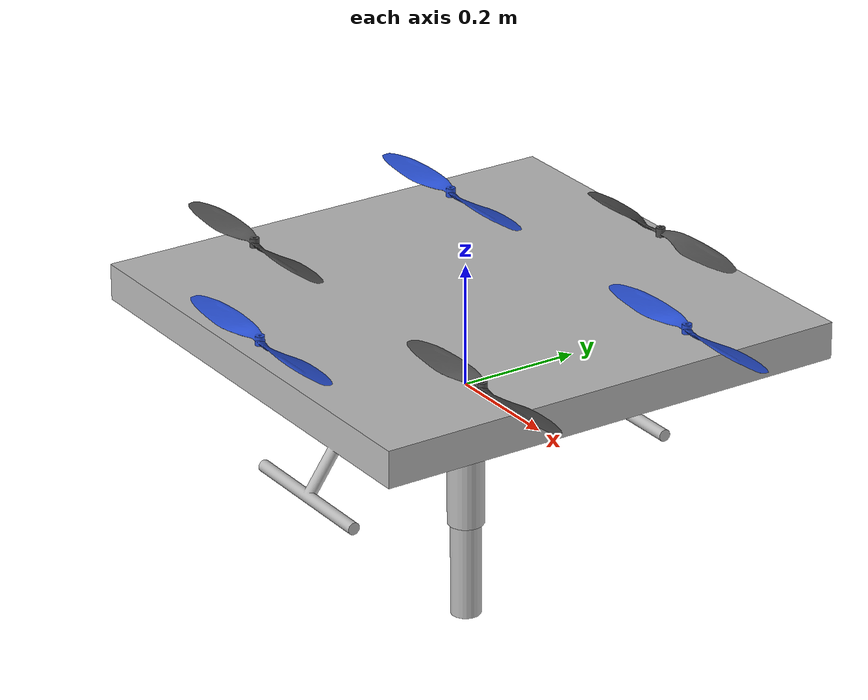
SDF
<?xml version='1.0'?>
<sdf version="1.6">
  <model name="drone_with_arm">

    <!-- Include the drone -->
    <include>
      <uri>model://sdu_drone</uri>
      <name>drone</name>
    </include>

    <!-- Create two-dof arm and gimbal -->
    <link name='arm_base_link'>
      <pose>0 0 0.12 0 3.14159 3.14159</pose>
      <inertial>
        <mass>0.0001</mass>
        <inertia>
          <ixx>0.00001</ixx>
          <ixy>0</ixy>
          <ixz>0</ixz>
          <iyy>0.00001</iyy>
          <iyz>0</iyz>
          <izz>0.00001</izz>
        </inertia>
      </inertial>
    </link>

    <link name="gimbal_pitch_link">
      <pose relative_to='arm_base_link'>0 0 0 0 0 0</pose>
      <inertial>
        <mass>0.0001</mass>
        <inertia>
          <ixx>0.00001</ixx>
          <ixy>0</ixy>
          <ixz>0</ixz>
          <iyy>0.00001</iyy>
          <iyz>0</iyz>
          <izz>0.00001</izz>
        </inertia>
      </inertial>
    </link>

    <joint name="gimbal_pitch_joint" type="revolute">
      <parent>arm_base_link</parent>
      <child>gimbal_pitch_link</child>
      <pose relative_to='arm_base_link'>0 0 0 0 0 0</pose>
      <axis>
        <xyz>0 1 0</xyz>
        <limit>
          <lower>-1.57</lower>
          <upper>1.57</upper>
          <effort>5</effort>
          <velocity>1</velocity>
        </limit>
      </axis>
    </joint>

    <link name="gimbal_roll_link">
      <pose relative_to='gimbal_pitch_link'>0 0 0 0 0 0</pose>
      <inertial>
        <mass>0.0001</mass>
        <inertia>
          <ixx>0.00001</ixx>
          <ixy>0</ixy>
          <ixz>0</ixz>
          <iyy>0.00001</iyy>
          <iyz>0</iyz>
          <izz>0.00001</izz>
        </inertia>
      </inertial>
    </link>

    <joint name="gimbal_roll_joint" type="revolute">
      <parent>gimbal_pitch_link</parent>
      <child>gimbal_roll_link</child>
      <pose relative_to='gimbal_pitch_link'>0 0 0 0 0 0</pose>
      <axis>
        <xyz>1 0 0</xyz>
        <limit>
          <lower>-1.57</lower>
          <upper>1.57</upper>
          <effort>5</effort>
          <velocity>1</velocity>
        </limit>
      </axis>
    </joint>

    <joint name='joint1' type='revolute'>
      <pose relative_to='gimbal_roll_link'>0 0 0.20 0 0 0</pose>
      <parent>gimbal_roll_link</parent>
      <child>link1</child>
      <axis>
        <xyz>0 1 0</xyz>
        <limit>
          <lower>-3.14</lower>
          <upper>3.14</upper>
          <effort>10</effort>
          <velocity>3</velocity>
        </limit>
        <dynamics>
          <spring_reference>0</spring_reference>
          <spring_stiffness>0</spring_stiffness>
        </dynamics>
      </axis>
    </joint>

    <link name='link1'>
      <pose relative_to='joint1'>0 0 0.08 0 0 0</pose>
      <inertial>
        <mass>0.0001</mass>
        <inertia>
          <ixx>0.000005</ixx>
          <ixy>0</ixy>
          <ixz>0</ixz>
          <iyy>0.000005</iyy>
          <iyz>0</iyz>
          <izz>0.000005</izz>
        </inertia>
      </inertial>
      <visual name='link1_visual'>
        <geometry>
          <cylinder>
            <length>0.16</length>
            <radius>0.03</radius>
          </cylinder>
        </geometry>
      </visual>
    </link>

    <joint name='joint2' type='revolute'>
      <pose relative_to='link1'>0 0 0.08 0 0 0</pose>
      <parent>link1</parent>
      <child>link2</child>
      <axis>
        <xyz>0 1 0</xyz>
        <limit>
          <lower>-2</lower>
          <upper>2</upper>
          <effort>10</effort>
          <velocity>3</velocity>
        </limit>
        <dynamics>
          <spring_reference>0</spring_reference>
          <spring_stiffness>0</spring_stiffness>
        </dynamics>
      </axis>
    </joint>

    <link name='link2'>
      <pose relative_to='joint2'>0 0 0.08 0 0 0</pose>
      <inertial>
        <mass>0.0001</mass>
        <inertia>
          <ixx>0.000003</ixx>
          <ixy>0</ixy>
          <ixz>0</ixz>
          <iyy>0.000003</iyy>
          <iyz>0</iyz>
          <izz>0.000003</izz>
        </inertia>
      </inertial>
      <visual name='link2_visual'>
        <geometry>
          <cylinder>
            <length>0.16</length>
            <radius>0.025</radius>
          </cylinder>
        </geometry>
      </visual>
    </link>

    <joint name='end_effector_joint' type='fixed'>
      <pose relative_to='link2'>0 0 0.08 0 0 0</pose>
      <parent>link2</parent>
      <child>end_effector_link</child>
    </joint>

    <link name='end_effector_link'>
      <pose relative_to='end_effector_joint'>0 0 0 0 0 0</pose>
      <inertial>
        <mass>0.0001</mass>
        <inertia>
          <ixx>0.000001</ixx>
          <ixy>0</ixy>
          <ixz>0</ixz>
          <iyy>0.000001</iyy>
          <iyz>0</iyz>
          <izz>0.000001</izz>
        </inertia>
      </inertial>
    </link>

    <!-- FIXED JOINT attaching arm to drone -->
    <joint name="arm_mount_joint" type="fixed">
      <parent>drone::base_link</parent>
      <child>arm_base_link</child>
      <pose>0 0 0 0 0 0</pose>
    </joint>

    <!-- Controller plugin for gimbal and arm -->
    <plugin name='gazebo_ros2_control' filename='libgazebo_ros2_control.so'>
      <parameters>/home/ash/MAS_ws_public/install/drone_with_arm/share/drone_with_arm/config/controllers.yaml</parameters>
    </plugin>

    <!-- Plugin for end effector pose publishing -->
    <plugin name="end_effector_pose_publisher" filename="libgazebo_ros_p3d.so">
      <ros>
        <namespace>end_effector</namespace>
        <remapping>odom:=pose</remapping>
      </ros>
      <body_name>end_effector_link</body_name>
      <frame_name>world</frame_name>
      <update_rate>30.0</update_rate>
    </plugin>

  </model>
</sdf>

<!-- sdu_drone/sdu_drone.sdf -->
<sdf version='1.6'>
  <model name='sdu_description'>
    <!-- SDU Drone body -->
    <link name='base_link'>
      <pose>0 0 0 0 -0 0</pose>
      <inertial>
        <pose>0 0 0 0 -0 0</pose>
        <mass>1.5</mass>
        <inertia>
          <ixx>0.0762625</ixx>
          <ixy>0</ixy>
          <ixz>0</ixz>
          <iyy>0.0762625</iyy>
          <iyz>0</iyz>
          <izz>0.1369</izz>
        </inertia>
      </inertial>
      <collision name='base_link_inertia_collision'>
        <pose>0 0 0 0 -0 0</pose>
        <geometry>
          <box>
            <size>0.74 0.74 0.25</size>
          </box>
        </geometry>
        <surface>
          <contact>
            <ode>
              <min_depth>0.001</min_depth>
              <max_vel>0</max_vel>
            </ode>
          </contact>
          <friction>
            <ode/>
          </friction>
        </surface>
      </collision>
      <visual name='base_link_inertia_visual'>
        <pose>0 0 0.125 0 0 0</pose>
        <geometry>
          <mesh>
            <scale>1 1 1</scale>
            <uri>model://sdu_description/meshes/sdu_drone.dae</uri>
          </mesh>
        </geometry>
      </visual>
      <gravity>1</gravity>
      <velocity_decay/>
    </link>
    <link name='/imu_link'>
      <pose>0 0 0 0 -0 0</pose>
      <inertial>
        <pose>0 0 0 0 -0 0</pose>
        <mass>0.015</mass>
        <inertia>
          <ixx>1e-05</ixx>
          <ixy>0</ixy>
          <ixz>0</ixz>
          <iyy>1e-05</iyy>
          <iyz>0</iyz>
          <izz>1e-05</izz>
        </inertia>
      </inertial>
    </link>
    <joint name='/imu_joint' type='revolute'>
      <child>/imu_link</child>
      <parent>base_link</parent>
      <axis>
        <xyz>1 0 0</xyz>
        <limit>
          <lower>0</lower>
          <upper>0</upper>
          <effort>0</effort>
          <velocity>0</velocity>
        </limit>
        <dynamics>
          <spring_reference>0</spring_reference>
          <spring_stiffness>0</spring_stiffness>
        </dynamics>
        <use_parent_model_frame>1</use_parent_model_frame>
      </axis>
    </joint>

    <!-- Rotor 0 (CW) -->
    <link name='rotor_0'>
      <pose>0.0 -0.37 0.170 0 -0 0</pose>
      <inertial>
        <pose>0 0 0 0 -0 0</pose>
        <mass>0.005</mass>
        <inertia>
          <ixx>9.75e-07</ixx>
          <ixy>0</ixy>
          <ixz>0</ixz>
          <iyy>0.000273104</iyy>
          <iyz>0</iyz>
          <izz>0.000274004</izz>
        </inertia>
      </inertial>
      <collision name='rotor_0_collision'>
        <pose>0 0 0 0 -0 0</pose>
        <geometry>
          <cylinder>
            <length>0.005</length>
            <radius>0.128</radius>
          </cylinder>
        </geometry>
        <surface>
          <contact>
            <ode/>
          </contact>
          <friction>
            <ode/>
          </friction>
        </surface>
      </collision>
      <visual name='rotor_0_visual'>
        <pose>0 0 0 0 -0 0</pose>
        <geometry>
          <mesh>
            <scale>1.5 1.5 1.5</scale>
            <uri>model://sdu_description/meshes/prop_cw.dae</uri>
          </mesh>
        </geometry>
        <material>
          <script>
            <name>Gazebo/Blue</name>
            <uri>file://media/materials/scripts/gazebo.material</uri>
          </script>
        </material>
      </visual>
      <gravity>1</gravity>
      <velocity_decay/>
    </link>
    <joint name='rotor_0_joint' type='revolute'>
      <child>rotor_0</child>
      <parent>base_link</parent>
      <axis>
        <xyz>0 0 1</xyz>
        <limit>
          <lower>-1e+16</lower>
          <upper>1e+16</upper>
        </limit>
        <dynamics>
          <spring_reference>0</spring_reference>
          <spring_stiffness>0</spring_stiffness>
        </dynamics>
        <use_parent_model_frame>1</use_parent_model_frame>
      </axis>
    </joint>

    <!-- Rotor 1 (CCW) -->
    <link name='rotor_1'>
      <pose>0 0.37 0.170 0 -0 0</pose>
      <inertial>
        <pose>0 0 0 0 -0 0</pose>
        <mass>0.005</mass>
        <inertia>
          <ixx>9.75e-07</ixx>
          <ixy>0</ixy>
          <ixz>0</ixz>
          <iyy>0.000273104</iyy>
          <iyz>0</iyz>
          <izz>0.000274004</izz>
        </inertia>
      </inertial>
      <collision name='rotor_1_collision'>
        <pose>0 0 0 0 -0 0</pose>
        <geometry>
          <cylinder>
            <length>0.005</length>
            <radius>0.128</radius>
          </cylinder>
        </geometry>
        <surface>
          <contact>
            <ode/>
          </contact>
          <friction>
            <ode/>
          </friction>
        </surface>
      </collision>
      <visual name='rotor_1_visual'>
        <pose>0 0 0 0 -0 0</pose>
        <geometry>
          <mesh>
            <scale>1.5 1.5 1.5</scale>
            <uri>model://sdu_description/meshes/prop_ccw.dae</uri>
          </mesh>
        </geometry>
        <material>
          <script>
            <name>Gazebo/DarkGrey</name>
            <uri>file://media/materials/scripts/gazebo.material</uri>
          </script>
        </material>
      </visual>
      <gravity>1</gravity>
      <velocity_decay/>
    </link>
    <joint name='rotor_1_joint' type='revolute'>
      <child>rotor_1</child>
      <parent>base_link</parent>
      <axis>
        <xyz>0 0 1</xyz>
        <limit>
          <lower>-1e+16</lower>
          <upper>1e+16</upper>
        </limit>
        <dynamics>
          <spring_reference>0</spring_reference>
          <spring_stiffness>0</spring_stiffness>
        </dynamics>
        <use_parent_model_frame>1</use_parent_model_frame>
      </axis>
    </joint>

    <!-- Rotor 2 (CW) -->
    <link name='rotor_2'>
      <pose>0.320429 0.185000 0.170 0 -0 0</pose>
      <inertial>
        <pose>0 0 0 0 -0 0</pose>
        <mass>0.005</mass>
        <inertia>
          <ixx>9.75e-07</ixx>
          <ixy>0</ixy>
          <ixz>0</ixz>
          <iyy>0.000273104</iyy>
          <iyz>0</iyz>
          <izz>0.000274004</izz>
        </inertia>
      </inertial>
      <collision name='rotor_2_collision'>
        <pose>0 0 0 0 -0 0</pose>
        <geometry>
          <cylinder>
            <length>0.005</length>
            <radius>0.128</radius>
          </cylinder>
        </geometry>
        <surface>
          <contact>
            <ode/>
          </contact>
          <friction>
            <ode/>
          </friction>
        </surface>
      </collision>
      <visual name='rotor_2_visual'>
        <pose>0 0 0 0 -0 0</pose>
        <geometry>
          <mesh>
            <scale>1.5 1.5 1.5</scale>
            <uri>model://sdu_description/meshes/prop_cw.dae</uri>
          </mesh>
        </geometry>
        <material>
          <script>
            <name>Gazebo/Blue</name>
            <uri>file://media/materials/scripts/gazebo.material</uri>
          </script>
        </material>
      </visual>
      <gravity>1</gravity>
      <velocity_decay/>
    </link>
    <joint name='rotor_2_joint' type='revolute'>
      <child>rotor_2</child>
      <parent>base_link</parent>
      <axis>
        <xyz>0 0 1</xyz>
        <limit>
          <lower>-1e+16</lower>
          <upper>1e+16</upper>
        </limit>
        <dynamics>
          <spring_reference>0</spring_reference>
          <spring_stiffness>0</spring_stiffness>
        </dynamics>
        <use_parent_model_frame>1</use_parent_model_frame>
      </axis>
    </joint>

    <!-- Rotor 3 (CW) -->
    <link name='rotor_3'>
      <pose>-0.320429 -0.185000 0.170 0 -0 0</pose>
      <inertial>
        <pose>0 0 0 0 -0 0</pose>
        <mass>0.005</mass>
        <inertia>
          <ixx>9.75e-07</ixx>
          <ixy>0</ixy>
          <ixz>0</ixz>
          <iyy>0.000273104</iyy>
          <iyz>0</iyz>
          <izz>0.000274004</izz>
        </inertia>
      </inertial>
      <collision name='rotor_3_collision'>
        <pose>0 0 0 0 -0 0</pose>
        <geometry>
          <cylinder>
            <length>0.005</length>
            <radius>0.128</radius>
          </cylinder>
        </geometry>
        <surface>
          <contact>
            <ode/>
          </contact>
          <friction>
            <ode/>
          </friction>
        </surface>
      </collision>
      <visual name='rotor_3_visual'>
        <pose>0 0 0 0 -0 0</pose>
        <geometry>
          <mesh>
            <scale>1.5 1.5 1.5</scale>
            <uri>model://sdu_description/meshes/prop_cw.dae</uri>
          </mesh>
        </geometry>
        <material>
          <script>
            <name>Gazebo/DarkGrey</name>
            <uri>file://media/materials/scripts/gazebo.material</uri>
          </script>
        </material>
      </visual>
      <gravity>1</gravity>
      <velocity_decay/>
    </link>
    <joint name='rotor_3_joint' type='revolute'>
      <child>rotor_3</child>
      <parent>base_link</parent>
      <axis>
        <xyz>0 0 1</xyz>
        <limit>
          <lower>-1e+16</lower>
          <upper>1e+16</upper>
        </limit>
        <dynamics>
          <spring_reference>0</spring_reference>
          <spring_stiffness>0</spring_stiffness>
        </dynamics>
        <use_parent_model_frame>1</use_parent_model_frame>
      </axis>
    </joint>

    <!-- Rotor 4 (CW) -->
    <link name='rotor_4'>
      <pose>0.320429 -0.185000 0.170 0 -0 0</pose>
      <inertial>
        <pose>0 0 0 0 -0 0</pose>
        <mass>0.005</mass>
        <inertia>
          <ixx>9.75e-07</ixx>
          <ixy>0</ixy>
          <ixz>0</ixz>
          <iyy>0.000273104</iyy>
          <iyz>0</iyz>
          <izz>0.000274004</izz>
        </inertia>
      </inertial>
      <collision name='rotor_4_collision'>
        <pose>0 0 0 0 -0 0</pose>
        <geometry>
          <cylinder>
            <length>0.005</length>
            <radius>0.128</radius>
          </cylinder>
        </geometry>
        <surface>
          <contact>
            <ode/>
          </contact>
          <friction>
            <ode/>
          </friction>
        </surface>
      </collision>
      <visual name='rotor_4_visual'>
        <pose>0 0 0 0 -0 0</pose>
        <geometry>
          <mesh>
            <scale>1.5 1.5 1.5</scale>
            <uri>model://sdu_description/meshes/prop_cw.dae</uri>
          </mesh>
        </geometry>
        <material>
          <script>
            <name>Gazebo/DarkGrey</name>
            <uri>file://media/materials/scripts/gazebo.material</uri>
          </script>
        </material>
      </visual>
      <gravity>1</gravity>
      <velocity_decay/>
    </link>
    <joint name='rotor_4_joint' type='revolute'>
      <child>rotor_4</child>
      <parent>base_link</parent>
      <axis>
        <xyz>0 0 1</xyz>
        <limit>
          <lower>-1e+16</lower>
          <upper>1e+16</upper>
        </limit>
        <dynamics>
          <spring_reference>0</spring_reference>
          <spring_stiffness>0</spring_stiffness>
        </dynamics>
        <use_parent_model_frame>1</use_parent_model_frame>
      </axis>
    </joint>

    <!-- Rotor 5 (CCW) -->
    <link name='rotor_5'>
      <pose>-0.320429 0.185000 0.170 0 -0 0</pose>
      <inertial>
        <pose>0 0 0 0 -0 0</pose>
        <mass>0.005</mass>
        <inertia>
          <ixx>9.75e-07</ixx>
          <ixy>0</ixy>
          <ixz>0</ixz>
          <iyy>0.000273104</iyy>
          <iyz>0</iyz>
          <izz>0.000274004</izz>
        </inertia>
      </inertial>
      <collision name='rotor_5_collision'>
        <pose>0 0 0 0 -0 0</pose>
        <geometry>
          <cylinder>
            <length>0.005</length>
            <radius>0.128</radius>
          </cylinder>
        </geometry>
        <surface>
          <contact>
            <ode/>
          </contact>
          <friction>
            <ode/>
          </friction>
        </surface>
      </collision>
      <visual name='rotor_5_visual'>
        <pose>0 0 0 0 -0 0</pose>
        <geometry>
          <mesh>
            <scale>1.5 1.5 1.5</scale>
            <uri>model://sdu_description/meshes/prop_cw.dae</uri>
          </mesh>
        </geometry>
        <material>
          <script>
            <name>Gazebo/Blue</name>
            <uri>file://media/materials/scripts/gazebo.material</uri>
          </script>
        </material>
      </visual>
      <gravity>1</gravity>
      <velocity_decay/>
    </link>
    <joint name='rotor_5_joint' type='revolute'>
      <child>rotor_5</child>
      <parent>base_link</parent>
      <axis>
        <xyz>0 0 1</xyz>
        <limit>
          <lower>-1e+16</lower>
          <upper>1e+16</upper>
        </limit>
        <dynamics>
          <spring_reference>0</spring_reference>
          <spring_stiffness>0</spring_stiffness>
        </dynamics>
        <use_parent_model_frame>1</use_parent_model_frame>
      </axis>
    </joint>

    <plugin name='rosbag' filename='libgazebo_multirotor_base_plugin.so'>
      <robotNamespace/>
      <linkName>base_link</linkName>
      <rotorVelocitySlowdownSim>10</rotorVelocitySlowdownSim>
    </plugin>

        <plugin name='motor_model_0' filename='libgazebo_motor_model.so'>
          <robotNamespace/>
          <jointName>rotor_0_joint</jointName>
          <linkName>rotor_0</linkName>
          <turningDirection>cw</turningDirection>
          <timeConstantUp>0.0125</timeConstantUp>
          <timeConstantDown>0.025</timeConstantDown>
          <maxRotVelocity>1100</maxRotVelocity>
          <motorConstant>8.54858e-06</motorConstant>
          <momentConstant>0.06</momentConstant>
          <commandSubTopic>/gazebo/command/motor_speed</commandSubTopic>
          <motorNumber>0</motorNumber>
          <rotorDragCoefficient>0.000806428</rotorDragCoefficient>
          <rollingMomentCoefficient>1e-06</rollingMomentCoefficient>
          <motorSpeedPubTopic>/motor_speed/0</motorSpeedPubTopic>
          <rotorVelocitySlowdownSim>10</rotorVelocitySlowdownSim>
        </plugin>
        <plugin name='motor_model_1' filename='libgazebo_motor_model.so'>
          <robotNamespace/>
          <jointName>rotor_1_joint</jointName>
          <linkName>rotor_1</linkName>
          <turningDirection>ccw</turningDirection>
          <timeConstantUp>0.0125</timeConstantUp>
          <timeConstantDown>0.025</timeConstantDown>
          <maxRotVelocity>1100</maxRotVelocity>
          <motorConstant>8.54858e-06</motorConstant>
          <momentConstant>0.06</momentConstant>
          <commandSubTopic>/gazebo/command/motor_speed</commandSubTopic>
          <motorNumber>1</motorNumber>
          <rotorDragCoefficient>0.000806428</rotorDragCoefficient>
          <rollingMomentCoefficient>1e-06</rollingMomentCoefficient>
          <motorSpeedPubTopic>/motor_speed/1</motorSpeedPubTopic>
          <rotorVelocitySlowdownSim>10</rotorVelocitySlowdownSim>
        </plugin>
        <plugin name='motor_model_2' filename='libgazebo_motor_model.so'>
          <robotNamespace/>
          <jointName>rotor_2_joint</jointName>
          <linkName>rotor_2</linkName>
          <turningDirection>cw</turningDirection>
          <timeConstantUp>0.0125</timeConstantUp>
          <timeConstantDown>0.025</timeConstantDown>
          <maxRotVelocity>1100</maxRotVelocity>
          <motorConstant>8.54858e-06</motorConstant>
          <momentConstant>0.06</momentConstant>
          <commandSubTopic>/gazebo/command/motor_speed</commandSubTopic>
          <motorNumber>2</motorNumber>
          <rotorDragCoefficient>0.000806428</rotorDragCoefficient>
          <rollingMomentCoefficient>1e-06</rollingMomentCoefficient>
          <motorSpeedPubTopic>/motor_speed/2</motorSpeedPubTopic>
          <rotorVelocitySlowdownSim>10</rotorVelocitySlowdownSim>
        </plugin>
        <plugin name='motor_model_3' filename='libgazebo_motor_model.so'>
          <robotNamespace/>
          <jointName>rotor_3_joint</jointName>
          <linkName>rotor_3</linkName>
          <turningDirection>ccw</turningDirection>
          <timeConstantUp>0.0125</timeConstantUp>
          <timeConstantDown>0.025</timeConstantDown>
          <maxRotVelocity>1100</maxRotVelocity>
          <motorConstant>8.54858e-06</motorConstant>
          <momentConstant>0.06</momentConstant>
          <commandSubTopic>/gazebo/command/motor_speed</commandSubTopic>
          <motorNumber>3</motorNumber>
          <rotorDragCoefficient>0.000806428</rotorDragCoefficient>
          <rollingMomentCoefficient>1e-06</rollingMomentCoefficient>
          <motorSpeedPubTopic>/motor_speed/3</motorSpeedPubTopic>
          <rotorVelocitySlowdownSim>10</rotorVelocitySlowdownSim>
        </plugin>
        <plugin name='motor_model_4' filename='libgazebo_motor_model.so'>
          <robotNamespace/>
          <jointName>rotor_4_joint</jointName>
          <linkName>rotor_4</linkName>
          <turningDirection>ccw</turningDirection>
          <timeConstantUp>0.0125</timeConstantUp>
          <timeConstantDown>0.025</timeConstantDown>
          <maxRotVelocity>1100</maxRotVelocity>
          <motorConstant>8.54858e-06</motorConstant>
          <momentConstant>0.06</momentConstant>
          <commandSubTopic>/gazebo/command/motor_speed</commandSubTopic>
          <motorNumber>4</motorNumber>
          <rotorDragCoefficient>0.000806428</rotorDragCoefficient>
          <rollingMomentCoefficient>1e-06</rollingMomentCoefficient>
          <motorSpeedPubTopic>/motor_speed/3</motorSpeedPubTopic>
          <rotorVelocitySlowdownSim>10</rotorVelocitySlowdownSim>
        </plugin>
        <plugin name='motor_model_5' filename='libgazebo_motor_model.so'>
          <robotNamespace/>
          <jointName>rotor_5_joint</jointName>
          <linkName>rotor_5</linkName>
          <turningDirection>cw</turningDirection>
          <timeConstantUp>0.0125</timeConstantUp>
          <timeConstantDown>0.025</timeConstantDown>
          <maxRotVelocity>1100</maxRotVelocity>
          <motorConstant>8.54858e-06</motorConstant>
          <momentConstant>0.06</momentConstant>
          <commandSubTopic>/gazebo/command/motor_speed</commandSubTopic>
          <motorNumber>5</motorNumber>
          <rotorDragCoefficient>0.000806428</rotorDragCoefficient>
          <rollingMomentCoefficient>1e-06</rollingMomentCoefficient>
          <motorSpeedPubTopic>/motor_speed/3</motorSpeedPubTopic>
          <rotorVelocitySlowdownSim>10</rotorVelocitySlowdownSim>
        </plugin>

    <model name='gps0'>
      <link name='link'>
        <pose>0 0 0.125 0 -0 0</pose>
        <inertial>
          <pose>0 0 0 0 -0 0</pose>
          <mass>0.01</mass>
          <inertia>
            <ixx>2.1733e-06</ixx>
            <ixy>0</ixy>
            <ixz>0</ixz>
            <iyy>2.1733e-06</iyy>
            <iyz>0</iyz>
            <izz>1.8e-07</izz>
          </inertia>
        </inertial>
        <visual name='visual'>
          <geometry>
            <cylinder>
              <radius>0.01</radius>
              <length>0.002</length>
            </cylinder>
          </geometry>
          <material>
            <script>
              <name>Gazebo/Black</name>
              <uri>__default__</uri>
            </script>
          </material>
        </visual>
        <sensor name='gps' type='gps'>
          <pose>0 0 0 0 -0 0</pose>
          <plugin name='gps_plugin' filename='libgazebo_gps_plugin.so'>
            <robotNamespace/>
            <gpsNoise>1</gpsNoise>
            <gpsXYRandomWalk>2.0</gpsXYRandomWalk>
            <gpsZRandomWalk>4.0</gpsZRandomWalk>
            <gpsXYNoiseDensity>0.0002</gpsXYNoiseDensity>
            <gpsZNoiseDensity>0.0004</gpsZNoiseDensity>
            <gpsVXYNoiseDensity>0.2</gpsVXYNoiseDensity>
            <gpsVZNoiseDensity>0.4</gpsVZNoiseDensity>
          </plugin>
        </sensor>
      </link>
    </model>
    <joint name='gps0_joint' type='fixed'>
      <parent>base_link</parent>
      <child>gps0::link</child>
    </joint>
    <plugin name='groundtruth_plugin' filename='libgazebo_groundtruth_plugin.so'>
      <robotNamespace/>
    </plugin>
    <plugin name='magnetometer_plugin' filename='libgazebo_magnetometer_plugin.so'>
      <robotNamespace/>
      <pubRate>20</pubRate>
      <noiseDensity>0.0004</noiseDensity>
      <randomWalk>6.4e-06</randomWalk>
      <biasCorrelationTime>600</biasCorrelationTime>
      <magTopic>/mag</magTopic>
    </plugin>
    <plugin name='barometer_plugin' filename='libgazebo_barometer_plugin.so'>
      <robotNamespace/>
      <pubRate>10</pubRate>
      <baroTopic>/baro</baroTopic>
    </plugin>

    <plugin name='parachute_plugin' filename='libgazebo_parachute_plugin.so'>
      <robotNamespace/>
      <commandSubTopic>/gazebo/command/motor_speed</commandSubTopic>
      <motorNumber>6</motorNumber>
    </plugin>

    <plugin name='mavlink_interface' filename='libgazebo_mavlink_interface.so'>
      <robotNamespace></robotNamespace>
      <imuSubTopic>/imu</imuSubTopic>
      <magSubTopic>/mag</magSubTopic>
      <baroSubTopic>/baro</baroSubTopic>
      <mavlink_addr>INADDR_ANY</mavlink_addr>
      <mavlink_udp_port>14560</mavlink_udp_port>
      <mavlink_tcp_port>4560</mavlink_tcp_port>
      <serialEnabled>false</serialEnabled>
      <serialDevice>/dev/ttyACM0</serialDevice>
      <baudRate>921600</baudRate>
      <qgc_addr>INADDR_ANY</qgc_addr>
      <qgc_udp_port>14550</qgc_udp_port>
      <sdk_addr>INADDR_ANY</sdk_addr>
      <sdk_udp_port>14540</sdk_udp_port>
      <hil_mode>0</hil_mode>
      <hil_state_level>0</hil_state_level>
      <vehicle_is_tailsitter>0</vehicle_is_tailsitter>
      <send_vision_estimation>1</send_vision_estimation>
      <send_odometry>0</send_odometry>
      <enable_lockstep>1</enable_lockstep>
      <use_tcp>1</use_tcp>
      <motorSpeedCommandPubTopic>/gazebo/command/motor_speed</motorSpeedCommandPubTopic>
      <control_channels>
        <channel name="rotor0">
          <input_index>0</input_index>
          <input_offset>0</input_offset>
          <input_scaling>1500</input_scaling>
          <zero_position_disarmed>0</zero_position_disarmed>
          <zero_position_armed>100</zero_position_armed>
          <joint_control_type>velocity</joint_control_type>
          <joint_name>rotor_0_joint</joint_name>
        </channel>
        <channel name="rotor1">
          <input_index>1</input_index>
          <input_offset>0</input_offset>
          <input_scaling>1500</input_scaling>
          <zero_position_disarmed>0</zero_position_disarmed>
          <zero_position_armed>100</zero_position_armed>
          <joint_control_type>velocity</joint_control_type>
          <joint_name>rotor_1_joint</joint_name>
        </channel>
        <channel name="rotor2">
          <input_index>2</input_index>
          <input_offset>0</input_offset>
          <input_scaling>1500</input_scaling>
          <zero_position_disarmed>0</zero_position_disarmed>
          <zero_position_armed>100</zero_position_armed>
          <joint_control_type>velocity</joint_control_type>
          <joint_name>rotor_2_joint</joint_name>
        </channel>
        <channel name="rotor3">
          <input_index>3</input_index>
          <input_offset>0</input_offset>
          <input_scaling>1500</input_scaling>
          <zero_position_disarmed>0</zero_position_disarmed>
          <zero_position_armed>100</zero_position_armed>
          <joint_control_type>velocity</joint_control_type>
          <joint_name>rotor_3_joint</joint_name>
        </channel>
        <channel name="rotor4">
          <input_index>4</input_index>
          <input_offset>0</input_offset>
          <input_scaling>1500</input_scaling>
          <zero_position_disarmed>0</zero_position_disarmed>
          <zero_position_armed>100</zero_position_armed>
          <joint_control_type>velocity</joint_control_type>
          <joint_name>rotor_4_joint</joint_name>
        </channel>
        <channel name="rotor5">
          <input_index>5</input_index>
          <input_offset>0</input_offset>
          <input_scaling>1500</input_scaling>
          <zero_position_disarmed>0</zero_position_disarmed>
          <zero_position_armed>100</zero_position_armed>
          <joint_control_type>velocity</joint_control_type>
          <joint_name>rotor_5_joint</joint_name>
        </channel>
        <channel name='aux1'>
          <input_index>6</input_index>
          <input_offset>0</input_offset>
          <input_scaling>1000</input_scaling>
          <zero_position_disarmed>0</zero_position_disarmed>
          <zero_position_armed>100</zero_position_armed>
          <joint_control_type>velocity</joint_control_type>
        </channel>
      </control_channels>
    </plugin>
    <static>0</static>
    <plugin name='gazebo_imu_plugin' filename='libgazebo_imu_plugin.so'>
      <robotNamespace></robotNamespace>
      <linkName>/imu_link</linkName>
      <imuTopic>/imu</imuTopic>
      <gyroscopeNoiseDensity>0.0003394</gyroscopeNoiseDensity>
      <gyroscopeRandomWalk>3.8785e-05</gyroscopeRandomWalk>
      <gyroscopeBiasCorrelationTime>1000.0</gyroscopeBiasCorrelationTime>
      <gyroscopeTurnOnBiasSigma>0.0087</gyroscopeTurnOnBiasSigma>
      <accelerometerNoiseDensity>0.004</accelerometerNoiseDensity>
      <accelerometerRandomWalk>0.006</accelerometerRandomWalk>
      <accelerometerBiasCorrelationTime>300.0</accelerometerBiasCorrelationTime>
      <accelerometerTurnOnBiasSigma>0.196</accelerometerTurnOnBiasSigma>
    </plugin>

</model>
</sdf>
